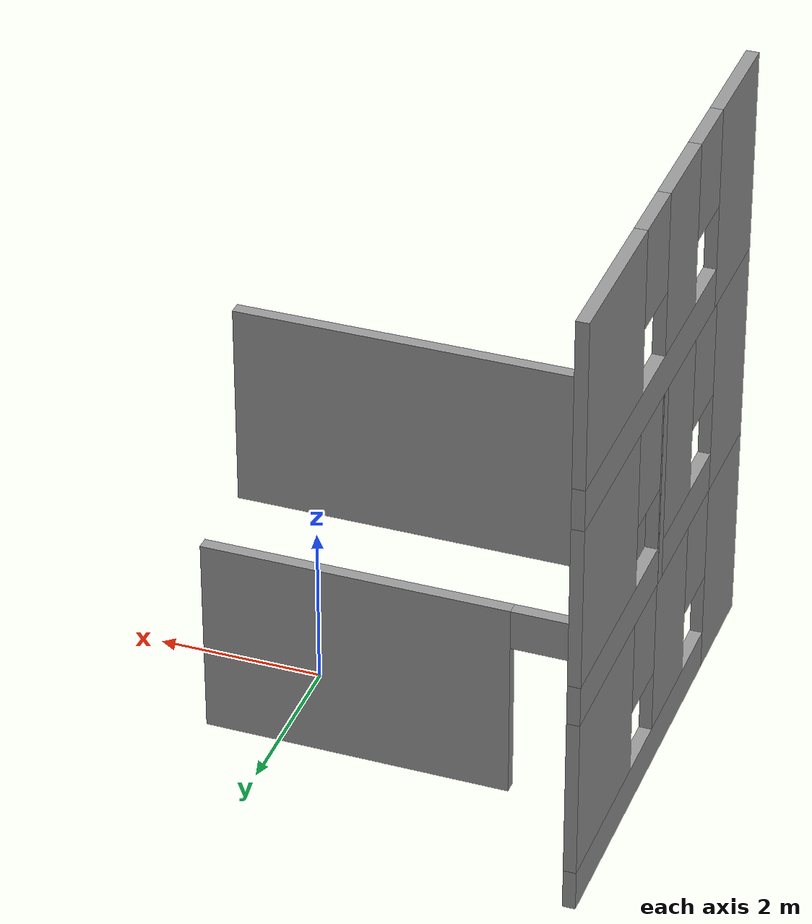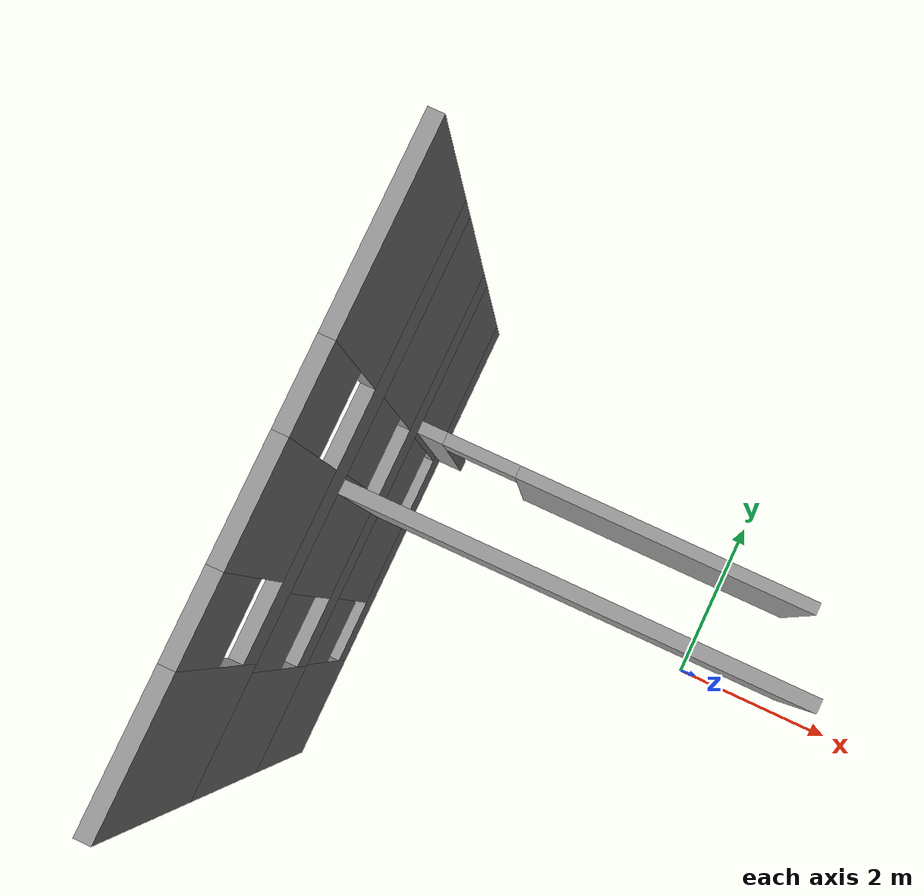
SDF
<sdf version="1.7">
 <model name="simple_building">
  <link name="Wall_1">
   <pose>-4.06892 0.011464 0 0 -0 1.5708</pose>
   <visual name="Wall_1_Visual_0">
    <pose>-2.34908 0 1.25 0 -0 0</pose>
    <geometry><box><size>1.30184 0.15 2.5</size></box></geometry>
    <material>
     <script><uri>file://media/materials/scripts/gazebo.material</uri><name>Gazebo/Grey</name></script>
     <ambient>1 1 1 1</ambient>
     <shader type="pixel"/>
    </material>
   </visual>
   <visual name="Wall_1_Visual_1">
    <pose>0.650921 0 0.25 0 -0 0</pose>
    <geometry><box><size>4.69816 0.15 0.5</size></box></geometry>
    <material>
     <script><uri>file://media/materials/scripts/gazebo.material</uri><name>Gazebo/Grey</name></script>
     <ambient>1 1 1 1</ambient>
     <shader type="pixel"/>
    </material>
   </visual>
   <visual name="Wall_1_Visual_2">
    <pose>-0.309589 0 1.5 0 -0 0</pose>
    <geometry><box><size>1.17714 0.15 2</size></box></geometry>
    <material>
     <script><uri>file://media/materials/scripts/gazebo.material</uri><name>Gazebo/Grey</name></script>
     <ambient>1 1 1 1</ambient>
     <shader type="pixel"/>
    </material>
   </visual>
   <visual name="Wall_1_Visual_3">
    <pose>2.03949 0 1.5 0 -0 0</pose>
    <geometry><box><size>1.92102 0.15 2</size></box></geometry>
    <material>
     <script><uri>file://media/materials/scripts/gazebo.material</uri><name>Gazebo/Grey</name></script>
     <ambient>1 1 1 1</ambient>
     <shader type="pixel"/>
    </material>
   </visual>
   <visual name="Wall_1_Visual_4">
    <pose>-1.29816 0 1.9 0 -0 0</pose>
    <geometry><box><size>0.8 0.15 1.2</size></box></geometry>
    <material>
     <script><uri>file://media/materials/scripts/gazebo.material</uri><name>Gazebo/Grey</name></script>
     <ambient>1 1 1 1</ambient>
     <shader type="pixel"/>
    </material>
   </visual>
   <visual name="Wall_1_Visual_5">
    <pose>0.678979 0 1.9 0 -0 0</pose>
    <geometry><box><size>0.8 0.15 1.2</size></box></geometry>
    <material>
     <script><uri>file://media/materials/scripts/gazebo.material</uri><name>Gazebo/Grey</name></script>
     <ambient>1 1 1 1</ambient>
     <shader type="pixel"/>
    </material>
   </visual>
   <collision name="Wall_1_Collision_0">
    <pose>-2.34908 0 1.25 0 -0 0</pose>
    <geometry><box><size>1.30184 0.15 2.5</size></box></geometry>
    <surface>
     <friction>
      <ode><mu>1</mu><mu2>1</mu2><fdir1>0 0 0</fdir1><slip1>0</slip1><slip2>0</slip2></ode>
      <torsional>
       <coefficient>1</coefficient>
       <patch_radius>0</patch_radius>
       <surface_radius>0</surface_radius>
       <use_patch_radius>1</use_patch_radius>
       <ode><slip>0</slip></ode>
      </torsional>
     </friction>
     <bounce><restitution_coefficient>0</restitution_coefficient><threshold>1e+06</threshold></bounce>
     <contact>
      <collide_without_contact>0</collide_without_contact>
      <collide_without_contact_bitmask>1</collide_without_contact_bitmask>
      <collide_bitmask>1</collide_bitmask>
      <ode>
       <soft_cfm>0</soft_cfm>
       <soft_erp>0.2</soft_erp>
       <kp>1e+13</kp>
       <kd>1</kd>
       <max_vel>0.01</max_vel>
       <min_depth>0</min_depth>
      </ode>
      <bullet>
       <split_impulse>1</split_impulse>
       <split_impulse_penetration_threshold>-0.01</split_impulse_penetration_threshold>
       <soft_cfm>0</soft_cfm>
       <soft_erp>0.2</soft_erp>
       <kp>1e+13</kp>
       <kd>1</kd>
      </bullet>
     </contact>
    </surface>
   </collision>
   <collision name="Wall_1_Collision_1">
    <pose>0.650921 0 0.25 0 -0 0</pose>
    <geometry><box><size>4.69816 0.15 0.5</size></box></geometry>
    <surface>
     <friction>
      <ode><mu>1</mu><mu2>1</mu2><fdir1>0 0 0</fdir1><slip1>0</slip1><slip2>0</slip2></ode>
      <torsional>
       <coefficient>1</coefficient>
       <patch_radius>0</patch_radius>
       <surface_radius>0</surface_radius>
       <use_patch_radius>1</use_patch_radius>
       <ode><slip>0</slip></ode>
      </torsional>
     </friction>
     <bounce><restitution_coefficient>0</restitution_coefficient><threshold>1e+06</threshold></bounce>
     <contact>
      <collide_without_contact>0</collide_without_contact>
      <collide_without_contact_bitmask>1</collide_without_contact_bitmask>
      <collide_bitmask>1</collide_bitmask>
      <ode>
       <soft_cfm>0</soft_cfm>
       <soft_erp>0.2</soft_erp>
       <kp>1e+13</kp>
       <kd>1</kd>
       <max_vel>0.01</max_vel>
       <min_depth>0</min_depth>
      </ode>
      <bullet>
       <split_impulse>1</split_impulse>
       <split_impulse_penetration_threshold>-0.01</split_impulse_penetration_threshold>
       <soft_cfm>0</soft_cfm>
       <soft_erp>0.2</soft_erp>
       <kp>1e+13</kp>
       <kd>1</kd>
      </bullet>
     </contact>
    </surface>
   </collision>
   <collision name="Wall_1_Collision_2">
    <pose>-0.309589 0 1.5 0 -0 0</pose>
    <geometry><box><size>1.17714 0.15 2</size></box></geometry>
    <surface>
     <friction>
      <ode><mu>1</mu><mu2>1</mu2><fdir1>0 0 0</fdir1><slip1>0</slip1><slip2>0</slip2></ode>
      <torsional>
       <coefficient>1</coefficient>
       <patch_radius>0</patch_radius>
       <surface_radius>0</surface_radius>
       <use_patch_radius>1</use_patch_radius>
       <ode><slip>0</slip></ode>
      </torsional>
     </friction>
     <bounce><restitution_coefficient>0</restitution_coefficient><threshold>1e+06</threshold></bounce>
     <contact>
      <collide_without_contact>0</collide_without_contact>
      <collide_without_contact_bitmask>1</collide_without_contact_bitmask>
      <collide_bitmask>1</collide_bitmask>
      <ode>
       <soft_cfm>0</soft_cfm>
       <soft_erp>0.2</soft_erp>
       <kp>1e+13</kp>
       <kd>1</kd>
       <max_vel>0.01</max_vel>
       <min_depth>0</min_depth>
      </ode>
      <bullet>
       <split_impulse>1</split_impulse>
       <split_impulse_penetration_threshold>-0.01</split_impulse_penetration_threshold>
       <soft_cfm>0</soft_cfm>
       <soft_erp>0.2</soft_erp>
       <kp>1e+13</kp>
       <kd>1</kd>
      </bullet>
     </contact>
    </surface>
   </collision>
   <collision name="Wall_1_Collision_3">
    <pose>2.03949 0 1.5 0 -0 0</pose>
    <geometry><box><size>1.92102 0.15 2</size></box></geometry>
    <surface>
     <friction>
      <ode><mu>1</mu><mu2>1</mu2><fdir1>0 0 0</fdir1><slip1>0</slip1><slip2>0</slip2></ode>
      <torsional>
       <coefficient>1</coefficient>
       <patch_radius>0</patch_radius>
       <surface_radius>0</surface_radius>
       <use_patch_radius>1</use_patch_radius>
       <ode><slip>0</slip></ode>
      </torsional>
     </friction>
     <bounce><restitution_coefficient>0</restitution_coefficient><threshold>1e+06</threshold></bounce>
     <contact>
      <collide_without_contact>0</collide_without_contact>
      <collide_without_contact_bitmask>1</collide_without_contact_bitmask>
      <collide_bitmask>1</collide_bitmask>
      <ode>
       <soft_cfm>0</soft_cfm>
       <soft_erp>0.2</soft_erp>
       <kp>1e+13</kp>
       <kd>1</kd>
       <max_vel>0.01</max_vel>
       <min_depth>0</min_depth>
      </ode>
      <bullet>
       <split_impulse>1</split_impulse>
       <split_impulse_penetration_threshold>-0.01</split_impulse_penetration_threshold>
       <soft_cfm>0</soft_cfm>
       <soft_erp>0.2</soft_erp>
       <kp>1e+13</kp>
       <kd>1</kd>
      </bullet>
     </contact>
    </surface>
   </collision>
   <collision name="Wall_1_Collision_4">
    <pose>-1.29816 0 1.9 0 -0 0</pose>
    <geometry><box><size>0.8 0.15 1.2</size></box></geometry>
    <surface>
     <friction>
      <ode><mu>1</mu><mu2>1</mu2><fdir1>0 0 0</fdir1><slip1>0</slip1><slip2>0</slip2></ode>
      <torsional>
       <coefficient>1</coefficient>
       <patch_radius>0</patch_radius>
       <surface_radius>0</surface_radius>
       <use_patch_radius>1</use_patch_radius>
       <ode><slip>0</slip></ode>
      </torsional>
     </friction>
     <bounce><restitution_coefficient>0</restitution_coefficient><threshold>1e+06</threshold></bounce>
     <contact>
      <collide_without_contact>0</collide_without_contact>
      <collide_without_contact_bitmask>1</collide_without_contact_bitmask>
      <collide_bitmask>1</collide_bitmask>
      <ode>
       <soft_cfm>0</soft_cfm>
       <soft_erp>0.2</soft_erp>
       <kp>1e+13</kp>
       <kd>1</kd>
       <max_vel>0.01</max_vel>
       <min_depth>0</min_depth>
      </ode>
      <bullet>
       <split_impulse>1</split_impulse>
       <split_impulse_penetration_threshold>-0.01</split_impulse_penetration_threshold>
       <soft_cfm>0</soft_cfm>
       <soft_erp>0.2</soft_erp>
       <kp>1e+13</kp>
       <kd>1</kd>
      </bullet>
     </contact>
    </surface>
   </collision>
   <collision name="Wall_1_Collision_5">
    <pose>0.678979 0 1.9 0 -0 0</pose>
    <geometry><box><size>0.8 0.15 1.2</size></box></geometry>
    <surface>
     <friction>
      <ode><mu>1</mu><mu2>1</mu2><fdir1>0 0 0</fdir1><slip1>0</slip1><slip2>0</slip2></ode>
      <torsional>
       <coefficient>1</coefficient>
       <patch_radius>0</patch_radius>
       <surface_radius>0</surface_radius>
       <use_patch_radius>1</use_patch_radius>
       <ode><slip>0</slip></ode>
      </torsional>
     </friction>
     <bounce><restitution_coefficient>0</restitution_coefficient><threshold>1e+06</threshold></bounce>
     <contact>
      <collide_without_contact>0</collide_without_contact>
      <collide_without_contact_bitmask>1</collide_without_contact_bitmask>
      <collide_bitmask>1</collide_bitmask>
      <ode>
       <soft_cfm>0</soft_cfm>
       <soft_erp>0.2</soft_erp>
       <kp>1e+13</kp>
       <kd>1</kd>
       <max_vel>0.01</max_vel>
       <min_depth>0</min_depth>
      </ode>
      <bullet>
       <split_impulse>1</split_impulse>
       <split_impulse_penetration_threshold>-0.01</split_impulse_penetration_threshold>
       <soft_cfm>0</soft_cfm>
       <soft_erp>0.2</soft_erp>
       <kp>1e+13</kp>
       <kd>1</kd>
      </bullet>
     </contact>
    </surface>
   </collision>
  </link>
  <link name="Wall_10">
   <pose>-1.60572 1.23127 0 0 -0 3.14159</pose>
   <visual name="Wall_10_Visual_0">
    <pose>-0.661074 0 1.25 0 -0 0</pose>
    <geometry><box><size>3.67785 0.15 2.5</size></box></geometry>
    <material>
     <script><uri>file://media/materials/scripts/gazebo.material</uri><name>Gazebo/Grey</name></script>
     <ambient>1 1 1 1</ambient>
     <shader type="pixel"/>
    </material>
   </visual>
   <visual name="Wall_10_Visual_1">
    <pose>2.28893 0 1.25 0 -0 0</pose>
    <geometry><box><size>0.422147 0.15 2.5</size></box></geometry>
    <material>
     <script><uri>file://media/materials/scripts/gazebo.material</uri><name>Gazebo/Grey</name></script>
     <ambient>1 1 1 1</ambient>
     <shader type="pixel"/>
    </material>
   </visual>
   <visual name="Wall_10_Visual_2">
    <pose>1.62785 0 2.25 0 -0 0</pose>
    <geometry><box><size>0.9 0.15 0.5</size></box></geometry>
    <material>
     <script><uri>file://media/materials/scripts/gazebo.material</uri><name>Gazebo/Grey</name></script>
     <ambient>1 1 1 1</ambient>
     <shader type="pixel"/>
    </material>
   </visual>
   <collision name="Wall_10_Collision_0">
    <pose>-0.661074 0 1.25 0 -0 0</pose>
    <geometry><box><size>3.67785 0.15 2.5</size></box></geometry>
    <surface>
     <friction>
      <ode><mu>1</mu><mu2>1</mu2><fdir1>0 0 0</fdir1><slip1>0</slip1><slip2>0</slip2></ode>
      <torsional>
       <coefficient>1</coefficient>
       <patch_radius>0</patch_radius>
       <surface_radius>0</surface_radius>
       <use_patch_radius>1</use_patch_radius>
       <ode><slip>0</slip></ode>
      </torsional>
     </friction>
     <bounce><restitution_coefficient>0</restitution_coefficient><threshold>1e+06</threshold></bounce>
     <contact>
      <collide_without_contact>0</collide_without_contact>
      <collide_without_contact_bitmask>1</collide_without_contact_bitmask>
      <collide_bitmask>1</collide_bitmask>
      <ode>
       <soft_cfm>0</soft_cfm>
       <soft_erp>0.2</soft_erp>
       <kp>1e+13</kp>
       <kd>1</kd>
       <max_vel>0.01</max_vel>
       <min_depth>0</min_depth>
      </ode>
      <bullet>
       <split_impulse>1</split_impulse>
       <split_impulse_penetration_threshold>-0.01</split_impulse_penetration_threshold>
       <soft_cfm>0</soft_cfm>
       <soft_erp>0.2</soft_erp>
       <kp>1e+13</kp>
       <kd>1</kd>
      </bullet>
     </contact>
    </surface>
   </collision>
   <collision name="Wall_10_Collision_1">
    <pose>2.28893 0 1.25 0 -0 0</pose>
    <geometry><box><size>0.422147 0.15 2.5</size></box></geometry>
    <surface>
     <friction>
      <ode><mu>1</mu><mu2>1</mu2><fdir1>0 0 0</fdir1><slip1>0</slip1><slip2>0</slip2></ode>
      <torsional>
       <coefficient>1</coefficient>
       <patch_radius>0</patch_radius>
       <surface_radius>0</surface_radius>
       <use_patch_radius>1</use_patch_radius>
       <ode><slip>0</slip></ode>
      </torsional>
     </friction>
     <bounce><restitution_coefficient>0</restitution_coefficient><threshold>1e+06</threshold></bounce>
     <contact>
      <collide_without_contact>0</collide_without_contact>
      <collide_without_contact_bitmask>1</collide_without_contact_bitmask>
      <collide_bitmask>1</collide_bitmask>
      <ode>
       <soft_cfm>0</soft_cfm>
       <soft_erp>0.2</soft_erp>
       <kp>1e+13</kp>
       <kd>1</kd>
       <max_vel>0.01</max_vel>
       <min_depth>0</min_depth>
      </ode>
      <bullet>
       <split_impulse>1</split_impulse>
       <split_impulse_penetration_threshold>-0.01</split_impulse_penetration_threshold>
       <soft_cfm>0</soft_cfm>
       <soft_erp>0.2</soft_erp>
       <kp>1e+13</kp>
       <kd>1</kd>
      </bullet>
     </contact>
    </surface>
   </collision>
   <collision name="Wall_10_Collision_2">
    <pose>1.62785 0 2.25 0 -0 0</pose>
    <geometry><box><size>0.9 0.15 0.5</size></box></geometry>
    <surface>
     <friction>
      <ode><mu>1</mu><mu2>1</mu2><fdir1>0 0 0</fdir1><slip1>0</slip1><slip2>0</slip2></ode>
      <torsional>
       <coefficient>1</coefficient>
       <patch_radius>0</patch_radius>
       <surface_radius>0</surface_radius>
       <use_patch_radius>1</use_patch_radius>
       <ode><slip>0</slip></ode>
      </torsional>
     </friction>
     <bounce><restitution_coefficient>0</restitution_coefficient><threshold>1e+06</threshold></bounce>
     <contact>
      <collide_without_contact>0</collide_without_contact>
      <collide_without_contact_bitmask>1</collide_without_contact_bitmask>
      <collide_bitmask>1</collide_bitmask>
      <ode>
       <soft_cfm>0</soft_cfm>
       <soft_erp>0.2</soft_erp>
       <kp>1e+13</kp>
       <kd>1</kd>
       <max_vel>0.01</max_vel>
       <min_depth>0</min_depth>
      </ode>
      <bullet>
       <split_impulse>1</split_impulse>
       <split_impulse_penetration_threshold>-0.01</split_impulse_penetration_threshold>
       <soft_cfm>0</soft_cfm>
       <soft_erp>0.2</soft_erp>
       <kp>1e+13</kp>
       <kd>1</kd>
      </bullet>
     </contact>
    </surface>
   </collision>
  </link>
  <link name="Wall_17">
   <pose>-4.06892 0.011464 2.5 0 -0 1.5708</pose>
   <visual name="Wall_17_Visual_0">
    <pose>-2.35668 0 1.25 0 -0 0</pose>
    <geometry><box><size>1.28663 0.15 2.5</size></box></geometry>
    <material>
     <script><uri>file://media/materials/scripts/gazebo.material</uri><name>Gazebo/Grey</name></script>
     <ambient>1 1 1 1</ambient>
     <shader type="pixel"/>
    </material>
   </visual>
   <visual name="Wall_17_Visual_1">
    <pose>0.643317 0 0.25 0 -0 0</pose>
    <geometry><box><size>4.71337 0.15 0.5</size></box></geometry>
    <material>
     <script><uri>file://media/materials/scripts/gazebo.material</uri><name>Gazebo/Grey</name></script>
     <ambient>1 1 1 1</ambient>
     <shader type="pixel"/>
    </material>
   </visual>
   <visual name="Wall_17_Visual_2">
    <pose>-0.309589 0 1.5 0 -0 0</pose>
    <geometry><box><size>1.20755 0.15 2</size></box></geometry>
    <material>
     <script><uri>file://media/materials/scripts/gazebo.material</uri><name>Gazebo/Grey</name></script>
     <ambient>1 1 1 1</ambient>
     <shader type="pixel"/>
    </material>
   </visual>
   <visual name="Wall_17_Visual_3">
    <pose>2.04709 0 1.5 0 -0 0</pose>
    <geometry><box><size>1.90581 0.15 2</size></box></geometry>
    <material>
     <script><uri>file://media/materials/scripts/gazebo.material</uri><name>Gazebo/Grey</name></script>
     <ambient>1 1 1 1</ambient>
     <shader type="pixel"/>
    </material>
   </visual>
   <visual name="Wall_17_Visual_4">
    <pose>-1.31337 0 1.9 0 -0 0</pose>
    <geometry><box><size>0.8 0.15 1.2</size></box></geometry>
    <material>
     <script><uri>file://media/materials/scripts/gazebo.material</uri><name>Gazebo/Grey</name></script>
     <ambient>1 1 1 1</ambient>
     <shader type="pixel"/>
    </material>
   </visual>
   <visual name="Wall_17_Visual_5">
    <pose>0.694188 0 1.9 0 -0 0</pose>
    <geometry><box><size>0.8 0.15 1.2</size></box></geometry>
    <material>
     <script><uri>file://media/materials/scripts/gazebo.material</uri><name>Gazebo/Grey</name></script>
     <ambient>1 1 1 1</ambient>
     <shader type="pixel"/>
    </material>
   </visual>
   <collision name="Wall_17_Collision_0">
    <pose>-2.35668 0 1.25 0 -0 0</pose>
    <geometry><box><size>1.28663 0.15 2.5</size></box></geometry>
    <surface>
     <friction>
      <ode><mu>1</mu><mu2>1</mu2><fdir1>0 0 0</fdir1><slip1>0</slip1><slip2>0</slip2></ode>
      <torsional>
       <coefficient>1</coefficient>
       <patch_radius>0</patch_radius>
       <surface_radius>0</surface_radius>
       <use_patch_radius>1</use_patch_radius>
       <ode><slip>0</slip></ode>
      </torsional>
     </friction>
     <bounce><restitution_coefficient>0</restitution_coefficient><threshold>1e+06</threshold></bounce>
     <contact>
      <collide_without_contact>0</collide_without_contact>
      <collide_without_contact_bitmask>1</collide_without_contact_bitmask>
      <collide_bitmask>1</collide_bitmask>
      <ode>
       <soft_cfm>0</soft_cfm>
       <soft_erp>0.2</soft_erp>
       <kp>1e+13</kp>
       <kd>1</kd>
       <max_vel>0.01</max_vel>
       <min_depth>0</min_depth>
      </ode>
      <bullet>
       <split_impulse>1</split_impulse>
       <split_impulse_penetration_threshold>-0.01</split_impulse_penetration_threshold>
       <soft_cfm>0</soft_cfm>
       <soft_erp>0.2</soft_erp>
       <kp>1e+13</kp>
       <kd>1</kd>
      </bullet>
     </contact>
    </surface>
   </collision>
   <collision name="Wall_17_Collision_1">
    <pose>0.643317 0 0.25 0 -0 0</pose>
    <geometry><box><size>4.71337 0.15 0.5</size></box></geometry>
    <surface>
     <friction>
      <ode><mu>1</mu><mu2>1</mu2><fdir1>0 0 0</fdir1><slip1>0</slip1><slip2>0</slip2></ode>
      <torsional>
       <coefficient>1</coefficient>
       <patch_radius>0</patch_radius>
       <surface_radius>0</surface_radius>
       <use_patch_radius>1</use_patch_radius>
       <ode><slip>0</slip></ode>
      </torsional>
     </friction>
     <bounce><restitution_coefficient>0</restitution_coefficient><threshold>1e+06</threshold></bounce>
     <contact>
      <collide_without_contact>0</collide_without_contact>
      <collide_without_contact_bitmask>1</collide_without_contact_bitmask>
      <collide_bitmask>1</collide_bitmask>
      <ode>
       <soft_cfm>0</soft_cfm>
       <soft_erp>0.2</soft_erp>
       <kp>1e+13</kp>
       <kd>1</kd>
       <max_vel>0.01</max_vel>
       <min_depth>0</min_depth>
      </ode>
      <bullet>
       <split_impulse>1</split_impulse>
       <split_impulse_penetration_threshold>-0.01</split_impulse_penetration_threshold>
       <soft_cfm>0</soft_cfm>
       <soft_erp>0.2</soft_erp>
       <kp>1e+13</kp>
       <kd>1</kd>
      </bullet>
     </contact>
    </surface>
   </collision>
   <collision name="Wall_17_Collision_2">
    <pose>-0.309589 0 1.5 0 -0 0</pose>
    <geometry><box><size>1.20755 0.15 2</size></box></geometry>
    <surface>
     <friction>
      <ode><mu>1</mu><mu2>1</mu2><fdir1>0 0 0</fdir1><slip1>0</slip1><slip2>0</slip2></ode>
      <torsional>
       <coefficient>1</coefficient>
       <patch_radius>0</patch_radius>
       <surface_radius>0</surface_radius>
       <use_patch_radius>1</use_patch_radius>
       <ode><slip>0</slip></ode>
      </torsional>
     </friction>
     <bounce><restitution_coefficient>0</restitution_coefficient><threshold>1e+06</threshold></bounce>
     <contact>
      <collide_without_contact>0</collide_without_contact>
      <collide_without_contact_bitmask>1</collide_without_contact_bitmask>
      <collide_bitmask>1</collide_bitmask>
      <ode>
       <soft_cfm>0</soft_cfm>
       <soft_erp>0.2</soft_erp>
       <kp>1e+13</kp>
       <kd>1</kd>
       <max_vel>0.01</max_vel>
       <min_depth>0</min_depth>
      </ode>
      <bullet>
       <split_impulse>1</split_impulse>
       <split_impulse_penetration_threshold>-0.01</split_impulse_penetration_threshold>
       <soft_cfm>0</soft_cfm>
       <soft_erp>0.2</soft_erp>
       <kp>1e+13</kp>
       <kd>1</kd>
      </bullet>
     </contact>
    </surface>
   </collision>
   <collision name="Wall_17_Collision_3">
    <pose>2.04709 0 1.5 0 -0 0</pose>
    <geometry><box><size>1.90581 0.15 2</size></box></geometry>
    <surface>
     <friction>
      <ode><mu>1</mu><mu2>1</mu2><fdir1>0 0 0</fdir1><slip1>0</slip1><slip2>0</slip2></ode>
      <torsional>
       <coefficient>1</coefficient>
       <patch_radius>0</patch_radius>
       <surface_radius>0</surface_radius>
       <use_patch_radius>1</use_patch_radius>
       <ode><slip>0</slip></ode>
      </torsional>
     </friction>
     <bounce><restitution_coefficient>0</restitution_coefficient><threshold>1e+06</threshold></bounce>
     <contact>
      <collide_without_contact>0</collide_without_contact>
      <collide_without_contact_bitmask>1</collide_without_contact_bitmask>
      <collide_bitmask>1</collide_bitmask>
      <ode>
       <soft_cfm>0</soft_cfm>
       <soft_erp>0.2</soft_erp>
       <kp>1e+13</kp>
       <kd>1</kd>
       <max_vel>0.01</max_vel>
       <min_depth>0</min_depth>
      </ode>
      <bullet>
       <split_impulse>1</split_impulse>
       <split_impulse_penetration_threshold>-0.01</split_impulse_penetration_threshold>
       <soft_cfm>0</soft_cfm>
       <soft_erp>0.2</soft_erp>
       <kp>1e+13</kp>
       <kd>1</kd>
      </bullet>
     </contact>
    </surface>
   </collision>
   <collision name="Wall_17_Collision_4">
    <pose>-1.31337 0 1.9 0 -0 0</pose>
    <geometry><box><size>0.8 0.15 1.2</size></box></geometry>
    <surface>
     <friction>
      <ode><mu>1</mu><mu2>1</mu2><fdir1>0 0 0</fdir1><slip1>0</slip1><slip2>0</slip2></ode>
      <torsional>
       <coefficient>1</coefficient>
       <patch_radius>0</patch_radius>
       <surface_radius>0</surface_radius>
       <use_patch_radius>1</use_patch_radius>
       <ode><slip>0</slip></ode>
      </torsional>
     </friction>
     <bounce><restitution_coefficient>0</restitution_coefficient><threshold>1e+06</threshold></bounce>
     <contact>
      <collide_without_contact>0</collide_without_contact>
      <collide_without_contact_bitmask>1</collide_without_contact_bitmask>
      <collide_bitmask>1</collide_bitmask>
      <ode>
       <soft_cfm>0</soft_cfm>
       <soft_erp>0.2</soft_erp>
       <kp>1e+13</kp>
       <kd>1</kd>
       <max_vel>0.01</max_vel>
       <min_depth>0</min_depth>
      </ode>
      <bullet>
       <split_impulse>1</split_impulse>
       <split_impulse_penetration_threshold>-0.01</split_impulse_penetration_threshold>
       <soft_cfm>0</soft_cfm>
       <soft_erp>0.2</soft_erp>
       <kp>1e+13</kp>
       <kd>1</kd>
      </bullet>
     </contact>
    </surface>
   </collision>
   <collision name="Wall_17_Collision_5">
    <pose>0.694188 0 1.9 0 -0 0</pose>
    <geometry><box><size>0.8 0.15 1.2</size></box></geometry>
    <surface>
     <friction>
      <ode><mu>1</mu><mu2>1</mu2><fdir1>0 0 0</fdir1><slip1>0</slip1><slip2>0</slip2></ode>
      <torsional>
       <coefficient>1</coefficient>
       <patch_radius>0</patch_radius>
       <surface_radius>0</surface_radius>
       <use_patch_radius>1</use_patch_radius>
       <ode><slip>0</slip></ode>
      </torsional>
     </friction>
     <bounce><restitution_coefficient>0</restitution_coefficient><threshold>1e+06</threshold></bounce>
     <contact>
      <collide_without_contact>0</collide_without_contact>
      <collide_without_contact_bitmask>1</collide_without_contact_bitmask>
      <collide_bitmask>1</collide_bitmask>
      <ode>
       <soft_cfm>0</soft_cfm>
       <soft_erp>0.2</soft_erp>
       <kp>1e+13</kp>
       <kd>1</kd>
       <max_vel>0.01</max_vel>
       <min_depth>0</min_depth>
      </ode>
      <bullet>
       <split_impulse>1</split_impulse>
       <split_impulse_penetration_threshold>-0.01</split_impulse_penetration_threshold>
       <soft_cfm>0</soft_cfm>
       <soft_erp>0.2</soft_erp>
       <kp>1e+13</kp>
       <kd>1</kd>
      </bullet>
     </contact>
    </surface>
   </collision>
  </link>
  <link name="Wall_22">
   <pose>-4.06892 0.011464 5 0 -0 1.5708</pose>
   <visual name="Wall_22_Visual_0">
    <pose>-2.31106 0 1.25 0 -0 0</pose>
    <geometry><box><size>1.37789 0.15 2.5</size></box></geometry>
    <material>
     <script><uri>file://media/materials/scripts/gazebo.material</uri><name>Gazebo/Grey</name></script>
     <ambient>1 1 1 1</ambient>
     <shader type="pixel"/>
    </material>
   </visual>
   <visual name="Wall_22_Visual_1">
    <pose>0.688943 0 0.25 0 -0 0</pose>
    <geometry><box><size>4.62211 0.15 0.5</size></box></geometry>
    <material>
     <script><uri>file://media/materials/scripts/gazebo.material</uri><name>Gazebo/Grey</name></script>
     <ambient>1 1 1 1</ambient>
     <shader type="pixel"/>
    </material>
   </visual>
   <visual name="Wall_22_Visual_2">
    <pose>-0.271567 0 1.5 0 -0 0</pose>
    <geometry><box><size>1.10109 0.15 2</size></box></geometry>
    <material>
     <script><uri>file://media/materials/scripts/gazebo.material</uri><name>Gazebo/Grey</name></script>
     <ambient>1 1 1 1</ambient>
     <shader type="pixel"/>
    </material>
   </visual>
   <visual name="Wall_22_Visual_3">
    <pose>2.03949 0 1.5 0 -0 0</pose>
    <geometry><box><size>1.92102 0.15 2</size></box></geometry>
    <material>
     <script><uri>file://media/materials/scripts/gazebo.material</uri><name>Gazebo/Grey</name></script>
     <ambient>1 1 1 1</ambient>
     <shader type="pixel"/>
    </material>
   </visual>
   <visual name="Wall_22_Visual_4">
    <pose>-1.22211 0 1.9 0 -0 0</pose>
    <geometry><box><size>0.8 0.15 1.2</size></box></geometry>
    <material>
     <script><uri>file://media/materials/scripts/gazebo.material</uri><name>Gazebo/Grey</name></script>
     <ambient>1 1 1 1</ambient>
     <shader type="pixel"/>
    </material>
   </visual>
   <visual name="Wall_22_Visual_5">
    <pose>0.678979 0 1.9 0 -0 0</pose>
    <geometry><box><size>0.8 0.15 1.2</size></box></geometry>
    <material>
     <script><uri>file://media/materials/scripts/gazebo.material</uri><name>Gazebo/Grey</name></script>
     <ambient>1 1 1 1</ambient>
     <shader type="pixel"/>
    </material>
   </visual>
   <collision name="Wall_22_Collision_0">
    <pose>-2.31106 0 1.25 0 -0 0</pose>
    <geometry><box><size>1.37789 0.15 2.5</size></box></geometry>
    <surface>
     <friction>
      <ode><mu>1</mu><mu2>1</mu2><fdir1>0 0 0</fdir1><slip1>0</slip1><slip2>0</slip2></ode>
      <torsional>
       <coefficient>1</coefficient>
       <patch_radius>0</patch_radius>
       <surface_radius>0</surface_radius>
       <use_patch_radius>1</use_patch_radius>
       <ode><slip>0</slip></ode>
      </torsional>
     </friction>
     <bounce><restitution_coefficient>0</restitution_coefficient><threshold>1e+06</threshold></bounce>
     <contact>
      <collide_without_contact>0</collide_without_contact>
      <collide_without_contact_bitmask>1</collide_without_contact_bitmask>
      <collide_bitmask>1</collide_bitmask>
      <ode>
       <soft_cfm>0</soft_cfm>
       <soft_erp>0.2</soft_erp>
       <kp>1e+13</kp>
       <kd>1</kd>
       <max_vel>0.01</max_vel>
       <min_depth>0</min_depth>
      </ode>
      <bullet>
       <split_impulse>1</split_impulse>
       <split_impulse_penetration_threshold>-0.01</split_impulse_penetration_threshold>
       <soft_cfm>0</soft_cfm>
       <soft_erp>0.2</soft_erp>
       <kp>1e+13</kp>
       <kd>1</kd>
      </bullet>
     </contact>
    </surface>
   </collision>
   <collision name="Wall_22_Collision_1">
    <pose>0.688943 0 0.25 0 -0 0</pose>
    <geometry><box><size>4.62211 0.15 0.5</size></box></geometry>
    <surface>
     <friction>
      <ode><mu>1</mu><mu2>1</mu2><fdir1>0 0 0</fdir1><slip1>0</slip1><slip2>0</slip2></ode>
      <torsional>
       <coefficient>1</coefficient>
       <patch_radius>0</patch_radius>
       <surface_radius>0</surface_radius>
       <use_patch_radius>1</use_patch_radius>
       <ode><slip>0</slip></ode>
      </torsional>
     </friction>
     <bounce><restitution_coefficient>0</restitution_coefficient><threshold>1e+06</threshold></bounce>
     <contact>
      <collide_without_contact>0</collide_without_contact>
      <collide_without_contact_bitmask>1</collide_without_contact_bitmask>
      <collide_bitmask>1</collide_bitmask>
      <ode>
       <soft_cfm>0</soft_cfm>
       <soft_erp>0.2</soft_erp>
       <kp>1e+13</kp>
       <kd>1</kd>
       <max_vel>0.01</max_vel>
       <min_depth>0</min_depth>
      </ode>
      <bullet>
       <split_impulse>1</split_impulse>
       <split_impulse_penetration_threshold>-0.01</split_impulse_penetration_threshold>
       <soft_cfm>0</soft_cfm>
       <soft_erp>0.2</soft_erp>
       <kp>1e+13</kp>
       <kd>1</kd>
      </bullet>
     </contact>
    </surface>
   </collision>
   <collision name="Wall_22_Collision_2">
    <pose>-0.271567 0 1.5 0 -0 0</pose>
    <geometry><box><size>1.10109 0.15 2</size></box></geometry>
    <surface>
     <friction>
      <ode><mu>1</mu><mu2>1</mu2><fdir1>0 0 0</fdir1><slip1>0</slip1><slip2>0</slip2></ode>
      <torsional>
       <coefficient>1</coefficient>
       <patch_radius>0</patch_radius>
       <surface_radius>0</surface_radius>
       <use_patch_radius>1</use_patch_radius>
       <ode><slip>0</slip></ode>
      </torsional>
     </friction>
     <bounce><restitution_coefficient>0</restitution_coefficient><threshold>1e+06</threshold></bounce>
     <contact>
      <collide_without_contact>0</collide_without_contact>
      <collide_without_contact_bitmask>1</collide_without_contact_bitmask>
      <collide_bitmask>1</collide_bitmask>
      <ode>
       <soft_cfm>0</soft_cfm>
       <soft_erp>0.2</soft_erp>
       <kp>1e+13</kp>
       <kd>1</kd>
       <max_vel>0.01</max_vel>
       <min_depth>0</min_depth>
      </ode>
      <bullet>
       <split_impulse>1</split_impulse>
       <split_impulse_penetration_threshold>-0.01</split_impulse_penetration_threshold>
       <soft_cfm>0</soft_cfm>
       <soft_erp>0.2</soft_erp>
       <kp>1e+13</kp>
       <kd>1</kd>
      </bullet>
     </contact>
    </surface>
   </collision>
   <collision name="Wall_22_Collision_3">
    <pose>2.03949 0 1.5 0 -0 0</pose>
    <geometry><box><size>1.92102 0.15 2</size></box></geometry>
    <surface>
     <friction>
      <ode><mu>1</mu><mu2>1</mu2><fdir1>0 0 0</fdir1><slip1>0</slip1><slip2>0</slip2></ode>
      <torsional>
       <coefficient>1</coefficient>
       <patch_radius>0</patch_radius>
       <surface_radius>0</surface_radius>
       <use_patch_radius>1</use_patch_radius>
       <ode><slip>0</slip></ode>
      </torsional>
     </friction>
     <bounce><restitution_coefficient>0</restitution_coefficient><threshold>1e+06</threshold></bounce>
     <contact>
      <collide_without_contact>0</collide_without_contact>
      <collide_without_contact_bitmask>1</collide_without_contact_bitmask>
      <collide_bitmask>1</collide_bitmask>
      <ode>
       <soft_cfm>0</soft_cfm>
       <soft_erp>0.2</soft_erp>
       <kp>1e+13</kp>
       <kd>1</kd>
       <max_vel>0.01</max_vel>
       <min_depth>0</min_depth>
      </ode>
      <bullet>
       <split_impulse>1</split_impulse>
       <split_impulse_penetration_threshold>-0.01</split_impulse_penetration_threshold>
       <soft_cfm>0</soft_cfm>
       <soft_erp>0.2</soft_erp>
       <kp>1e+13</kp>
       <kd>1</kd>
      </bullet>
     </contact>
    </surface>
   </collision>
   <collision name="Wall_22_Collision_4">
    <pose>-1.22211 0 1.9 0 -0 0</pose>
    <geometry><box><size>0.8 0.15 1.2</size></box></geometry>
    <surface>
     <friction>
      <ode><mu>1</mu><mu2>1</mu2><fdir1>0 0 0</fdir1><slip1>0</slip1><slip2>0</slip2></ode>
      <torsional>
       <coefficient>1</coefficient>
       <patch_radius>0</patch_radius>
       <surface_radius>0</surface_radius>
       <use_patch_radius>1</use_patch_radius>
       <ode><slip>0</slip></ode>
      </torsional>
     </friction>
     <bounce><restitution_coefficient>0</restitution_coefficient><threshold>1e+06</threshold></bounce>
     <contact>
      <collide_without_contact>0</collide_without_contact>
      <collide_without_contact_bitmask>1</collide_without_contact_bitmask>
      <collide_bitmask>1</collide_bitmask>
      <ode>
       <soft_cfm>0</soft_cfm>
       <soft_erp>0.2</soft_erp>
       <kp>1e+13</kp>
       <kd>1</kd>
       <max_vel>0.01</max_vel>
       <min_depth>0</min_depth>
      </ode>
      <bullet>
       <split_impulse>1</split_impulse>
       <split_impulse_penetration_threshold>-0.01</split_impulse_penetration_threshold>
       <soft_cfm>0</soft_cfm>
       <soft_erp>0.2</soft_erp>
       <kp>1e+13</kp>
       <kd>1</kd>
      </bullet>
     </contact>
    </surface>
   </collision>
   <collision name="Wall_22_Collision_5">
    <pose>0.678979 0 1.9 0 -0 0</pose>
    <geometry><box><size>0.8 0.15 1.2</size></box></geometry>
    <surface>
     <friction>
      <ode><mu>1</mu><mu2>1</mu2><fdir1>0 0 0</fdir1><slip1>0</slip1><slip2>0</slip2></ode>
      <torsional>
       <coefficient>1</coefficient>
       <patch_radius>0</patch_radius>
       <surface_radius>0</surface_radius>
       <use_patch_radius>1</use_patch_radius>
       <ode><slip>0</slip></ode>
      </torsional>
     </friction>
     <bounce><restitution_coefficient>0</restitution_coefficient><threshold>1e+06</threshold></bounce>
     <contact>
      <collide_without_contact>0</collide_without_contact>
      <collide_without_contact_bitmask>1</collide_without_contact_bitmask>
      <collide_bitmask>1</collide_bitmask>
      <ode>
       <soft_cfm>0</soft_cfm>
       <soft_erp>0.2</soft_erp>
       <kp>1e+13</kp>
       <kd>1</kd>
       <max_vel>0.01</max_vel>
       <min_depth>0</min_depth>
      </ode>
      <bullet>
       <split_impulse>1</split_impulse>
       <split_impulse_penetration_threshold>-0.01</split_impulse_penetration_threshold>
       <soft_cfm>0</soft_cfm>
       <soft_erp>0.2</soft_erp>
       <kp>1e+13</kp>
       <kd>1</kd>
      </bullet>
     </contact>
    </surface>
   </collision>
  </link>
  <link name="Wall_35">
   <pose>-1.64505 0.188555 2.5 0 -0 0</pose>
   <visual name="Wall_35_Visual">
    <pose>0 0 1.25 0 -0 0</pose>
    <geometry><box><size>5 0.15 2.5</size></box></geometry>
    <material>
     <script><uri>file://media/materials/scripts/gazebo.material</uri><name>Gazebo/Grey</name></script>
     <ambient>1 1 1 1</ambient>
     <shader type="pixel"/>
    </material>
   </visual>
   <collision name="Wall_35_Collision">
    <pose>0 0 1.25 0 -0 0</pose>
    <geometry><box><size>5 0.15 2.5</size></box></geometry>
    <surface>
     <friction>
      <ode><mu>1</mu><mu2>1</mu2><fdir1>0 0 0</fdir1><slip1>0</slip1><slip2>0</slip2></ode>
      <torsional>
       <coefficient>1</coefficient>
       <patch_radius>0</patch_radius>
       <surface_radius>0</surface_radius>
       <use_patch_radius>1</use_patch_radius>
       <ode><slip>0</slip></ode>
      </torsional>
     </friction>
     <bounce><restitution_coefficient>0</restitution_coefficient><threshold>1e+06</threshold></bounce>
     <contact>
      <collide_without_contact>0</collide_without_contact>
      <collide_without_contact_bitmask>1</collide_without_contact_bitmask>
      <collide_bitmask>1</collide_bitmask>
      <ode>
       <soft_cfm>0</soft_cfm>
       <soft_erp>0.2</soft_erp>
       <kp>1e+13</kp>
       <kd>1</kd>
       <max_vel>0.01</max_vel>
       <min_depth>0</min_depth>
      </ode>
      <bullet>
       <split_impulse>1</split_impulse>
       <split_impulse_penetration_threshold>-0.01</split_impulse_penetration_threshold>
       <soft_cfm>0</soft_cfm>
       <soft_erp>0.2</soft_erp>
       <kp>1e+13</kp>
       <kd>1</kd>
      </bullet>
     </contact>
    </surface>
   </collision>
  </link>
  <static>1</static>
 </model>
</sdf>
